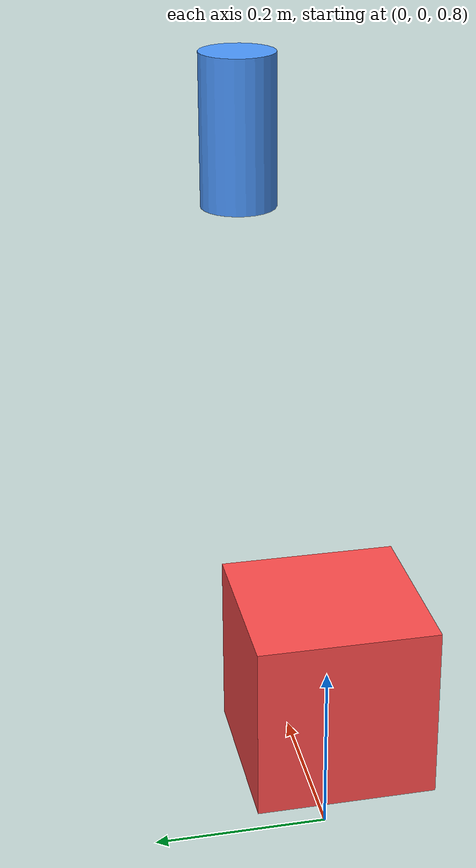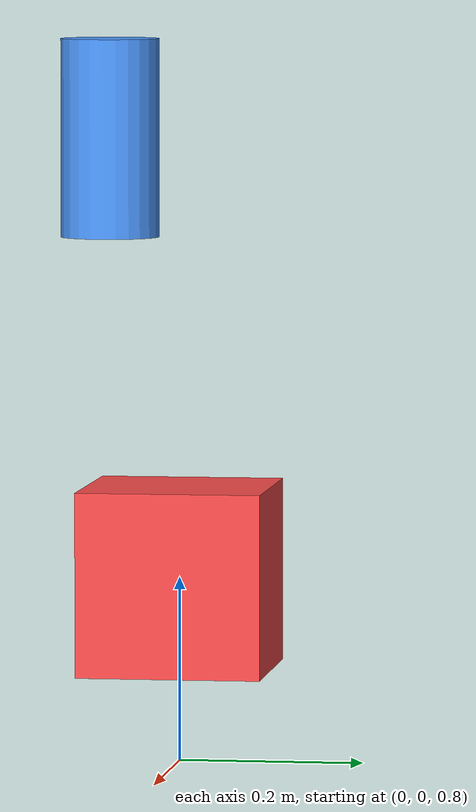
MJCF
<mujoco model="basics">
  <option gravity="0 0 -9.81"/>

  <worldbody>
    <light pos="0 0 3" dir="0.5 0 -1"/>

    <!-- Floor -->
    <geom name="floor"
          type="plane"
          size="2 2 0.1"
          rgba=".8 .8 .8 1"/>

    <!-- A box sitting on the floor -->
    <body name="box" pos="0 0 1">
    <freejoint/>
      <geom type="box"
            size="0.1 0.1 0.1"
            rgba="1 0.3 0.3 1"/>
    </body>

    <!-- A cylinder next to it -->
    <body name="cylinder" pos="0.5 0 1.5">
    <freejoint/>
      <geom type="cylinder"
            size="0.05 0.1"
            rgba="0.3 0.6 1 1"/>
    </body>

  </worldbody>
</mujoco>
